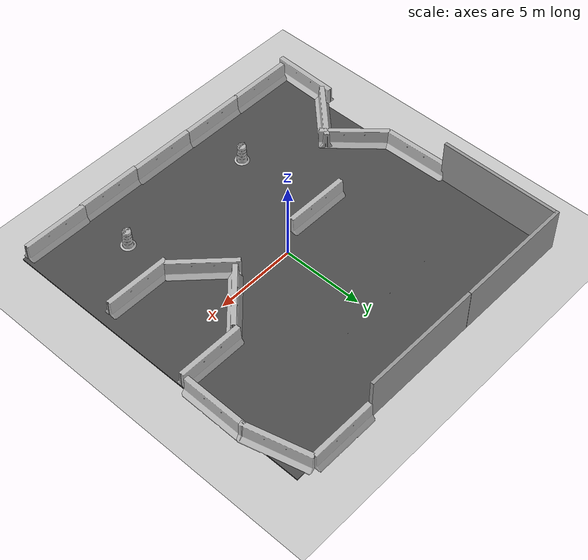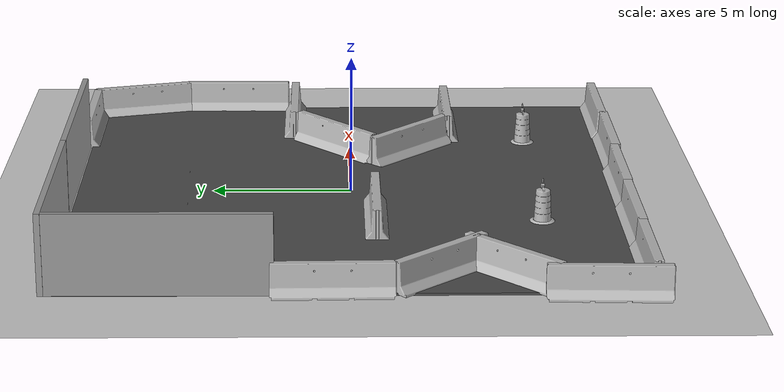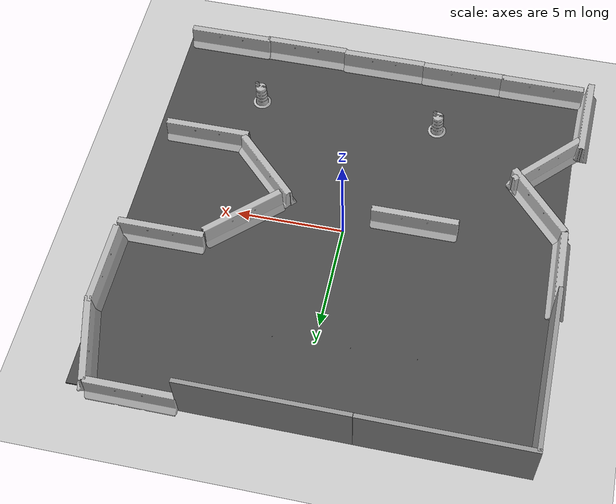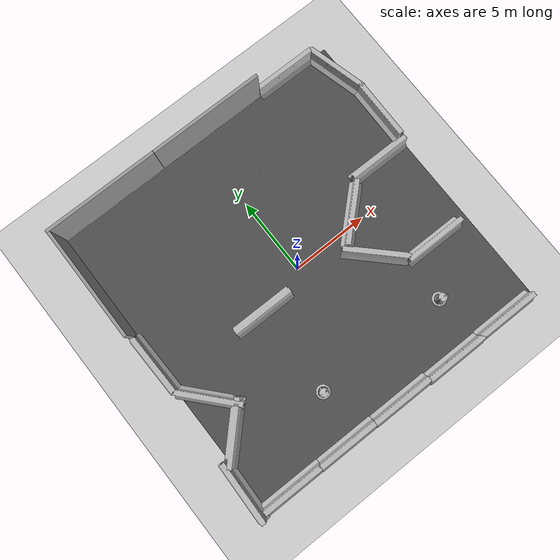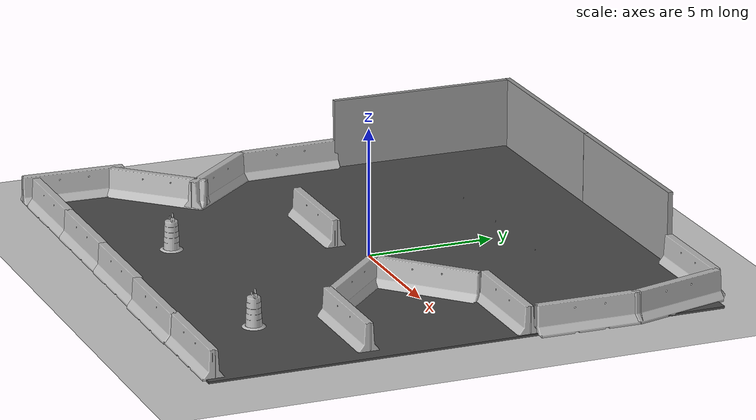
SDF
<sdf version="1.6">
 <world name="default">
  <light name="sun" type="directional">
   <pose>0 0 10 0 -0 0</pose>
   <diffuse>0.8 0.8 0.8 1</diffuse>
   <specular>0.1 0.1 0.1 1</specular>
   <attenuation>
    <range>1000</range>
    <constant>0.9</constant>
    <linear>0.01</linear>
    <quadratic>0.001</quadratic>
   </attenuation>
   <direction>-0.5 0.5 -1</direction>
  </light>
  <model name="ground_plane">
   <static>1</static>
   <link name="link">
    <collision name="collision">
     <geometry><plane><normal>0 0 1</normal><size>100 100</size></plane></geometry>
     <surface><friction><ode><mu>100</mu><mu2>50</mu2></ode></friction></surface>
    </collision>
    <visual name="visual">
     <cast_shadows>0</cast_shadows>
     <geometry><plane><normal>0 0 1</normal><size>100 100</size></plane></geometry>
     <material>
      <script><uri>file://media/materials/scripts/gazebo.material</uri><name>Gazebo/Grey</name></script>
     </material>
    </visual>
   </link>
  </model>
  <gravity>0 0 -9.8</gravity>
  <magnetic_field>6e-06 2.3e-05 -4.2e-05</magnetic_field>
  <atmosphere type="adiabatic"/>
  <physics name="default_physics" default="0" type="ode">
   <max_step_size>0.001</max_step_size>
   <real_time_factor>1</real_time_factor>
   <real_time_update_rate>1000</real_time_update_rate>
  </physics>
  <scene><ambient>0.4 0.4 0.4 1</ambient><background>0.7 0.7 0.7 1</background><shadows>1</shadows></scene>
  <spherical_coordinates>
   <surface_model>EARTH_WGS84</surface_model>
   <latitude_deg>0</latitude_deg>
   <longitude_deg>0</longitude_deg>
   <elevation>0</elevation>
   <heading_deg>0</heading_deg>
  </spherical_coordinates>
  <model name="grey_wall">
   <static>1</static>
   <link name="link">
    <pose>0 0 1.4 0 -0 0</pose>
    <collision name="collision"><geometry><box><size>7.5 0.2 2.8</size></box></geometry></collision>
    <visual name="visual">
     <cast_shadows>0</cast_shadows>
     <geometry><box><size>7.5 0.2 2.8</size></box></geometry>
     <material>
      <script>
       <uri>model://grey_wall/materials/scripts</uri>
       <uri>model://grey_wall/materials/textures</uri>
       <name>vrc/grey_wall</name>
      </script>
     </material>
    </visual>
   </link>
   <pose>-6.28224 10.0709 0 0 -0 0</pose>
  </model>
  <model name="grey_wall_0">
   <static>1</static>
   <link name="link">
    <pose>0 0 1.4 0 -0 0</pose>
    <collision name="collision"><geometry><box><size>7.5 0.2 2.8</size></box></geometry></collision>
    <visual name="visual">
     <cast_shadows>0</cast_shadows>
     <geometry><box><size>7.5 0.2 2.8</size></box></geometry>
     <material>
      <script>
       <uri>model://grey_wall/materials/scripts</uri>
       <uri>model://grey_wall/materials/textures</uri>
       <name>vrc/grey_wall</name>
      </script>
     </material>
    </visual>
   </link>
   <pose>1.23457 10.0666 0 0 -0 0</pose>
  </model>
  <model name="grey_wall_1">
   <static>1</static>
   <link name="link">
    <pose>0 0 1.4 0 -0 0</pose>
    <collision name="collision"><geometry><box><size>7.5 0.2 2.8</size></box></geometry></collision>
    <visual name="visual">
     <cast_shadows>0</cast_shadows>
     <geometry><box><size>7.5 0.2 2.8</size></box></geometry>
     <material>
      <script>
       <uri>model://grey_wall/materials/scripts</uri>
       <uri>model://grey_wall/materials/textures</uri>
       <name>vrc/grey_wall</name>
      </script>
     </material>
    </visual>
   </link>
   <pose>-9.94425 6.32421 0 0 -0 1.56445</pose>
  </model>
  <model name="jersey_barrier">
   <static>1</static>
   <link name="link">
    <visual name="visual">
     <geometry>
      <mesh><uri>model://jersey_barrier/meshes/jersey_barrier.dae</uri><scale>1 1 1</scale></mesh>
     </geometry>
    </visual>
    <collision name="upright">
     <pose>0 0 0.5715 0 -0 0</pose>
     <geometry><box><size>4.06542 0.3063 1.143</size></box></geometry>
    </collision>
    <collision name="base">
     <pose>0 0 0.032258 0 -0 0</pose>
     <geometry><box><size>4.06542 0.8107 0.064516</size></box></geometry>
    </collision>
    <collision name="base2">
     <pose>0 0 0.1 0 -0 0</pose>
     <geometry><box><size>4.06542 0.65 0.1</size></box></geometry>
    </collision>
    <collision name="base3">
     <pose>0 0 0.2 0 -0 0</pose>
     <geometry><box><size>4.06542 0.5 0.1</size></box></geometry>
    </collision>
    <collision name="left-angle">
     <pose>0 -0.224 0.2401 0.9 -0 0</pose>
     <geometry><box><size>4.06542 0.5 0.064516</size></box></geometry>
    </collision>
    <collision name="right-angle">
     <pose>0 0.224 0.2401 -0.9 0 0</pose>
     <geometry><box><size>4.06542 0.5 0.064516</size></box></geometry>
    </collision>
   </link>
   <pose>6.98061 10.0389 0 0 -0 0</pose>
  </model>
  <model name="jersey_barrier_0">
   <static>1</static>
   <link name="link">
    <visual name="visual">
     <geometry>
      <mesh><uri>model://jersey_barrier/meshes/jersey_barrier.dae</uri><scale>1 1 1</scale></mesh>
     </geometry>
    </visual>
    <collision name="upright">
     <pose>0 0 0.5715 0 -0 0</pose>
     <geometry><box><size>4.06542 0.3063 1.143</size></box></geometry>
    </collision>
    <collision name="base">
     <pose>0 0 0.032258 0 -0 0</pose>
     <geometry><box><size>4.06542 0.8107 0.064516</size></box></geometry>
    </collision>
    <collision name="base2">
     <pose>0 0 0.1 0 -0 0</pose>
     <geometry><box><size>4.06542 0.65 0.1</size></box></geometry>
    </collision>
    <collision name="base3">
     <pose>0 0 0.2 0 -0 0</pose>
     <geometry><box><size>4.06542 0.5 0.1</size></box></geometry>
    </collision>
    <collision name="left-angle">
     <pose>0 -0.224 0.2401 0.9 -0 0</pose>
     <geometry><box><size>4.06542 0.5 0.064516</size></box></geometry>
    </collision>
    <collision name="right-angle">
     <pose>0 0.224 0.2401 -0.9 0 0</pose>
     <geometry><box><size>4.06542 0.5 0.064516</size></box></geometry>
    </collision>
   </link>
   <pose>9.53249 8.14758 0 0 0 -1.31206</pose>
  </model>
  <model name="jersey_barrier_1">
   <static>1</static>
   <link name="link">
    <visual name="visual">
     <geometry>
      <mesh><uri>model://jersey_barrier/meshes/jersey_barrier.dae</uri><scale>1 1 1</scale></mesh>
     </geometry>
    </visual>
    <collision name="upright">
     <pose>0 0 0.5715 0 -0 0</pose>
     <geometry><box><size>4.06542 0.3063 1.143</size></box></geometry>
    </collision>
    <collision name="base">
     <pose>0 0 0.032258 0 -0 0</pose>
     <geometry><box><size>4.06542 0.8107 0.064516</size></box></geometry>
    </collision>
    <collision name="base2">
     <pose>0 0 0.1 0 -0 0</pose>
     <geometry><box><size>4.06542 0.65 0.1</size></box></geometry>
    </collision>
    <collision name="base3">
     <pose>0 0 0.2 0 -0 0</pose>
     <geometry><box><size>4.06542 0.5 0.1</size></box></geometry>
    </collision>
    <collision name="left-angle">
     <pose>0 -0.224 0.2401 0.9 -0 0</pose>
     <geometry><box><size>4.06542 0.5 0.064516</size></box></geometry>
    </collision>
    <collision name="right-angle">
     <pose>0 0.224 0.2401 -0.9 0 0</pose>
     <geometry><box><size>4.06542 0.5 0.064516</size></box></geometry>
    </collision>
   </link>
   <pose>-8.65412 -2.83844 0 0 0 -0.840194</pose>
  </model>
  <model name="jersey_barrier_2">
   <static>1</static>
   <link name="link">
    <visual name="visual">
     <geometry>
      <mesh><uri>model://jersey_barrier/meshes/jersey_barrier.dae</uri><scale>1 1 1</scale></mesh>
     </geometry>
    </visual>
    <collision name="upright">
     <pose>0 0 0.5715 0 -0 0</pose>
     <geometry><box><size>4.06542 0.3063 1.143</size></box></geometry>
    </collision>
    <collision name="base">
     <pose>0 0 0.032258 0 -0 0</pose>
     <geometry><box><size>4.06542 0.8107 0.064516</size></box></geometry>
    </collision>
    <collision name="base2">
     <pose>0 0 0.1 0 -0 0</pose>
     <geometry><box><size>4.06542 0.65 0.1</size></box></geometry>
    </collision>
    <collision name="base3">
     <pose>0 0 0.2 0 -0 0</pose>
     <geometry><box><size>4.06542 0.5 0.1</size></box></geometry>
    </collision>
    <collision name="left-angle">
     <pose>0 -0.224 0.2401 0.9 -0 0</pose>
     <geometry><box><size>4.06542 0.5 0.064516</size></box></geometry>
    </collision>
    <collision name="right-angle">
     <pose>0 0.224 0.2401 -0.9 0 0</pose>
     <geometry><box><size>4.06542 0.5 0.064516</size></box></geometry>
    </collision>
   </link>
   <pose>-10.3097 -8.15685 0 0 0 -1.60239</pose>
  </model>
  <model name="jersey_barrier_3">
   <static>1</static>
   <link name="link">
    <visual name="visual">
     <geometry>
      <mesh><uri>model://jersey_barrier/meshes/jersey_barrier.dae</uri><scale>1 1 1</scale></mesh>
     </geometry>
    </visual>
    <collision name="upright">
     <pose>0 0 0.5715 0 -0 0</pose>
     <geometry><box><size>4.06542 0.3063 1.143</size></box></geometry>
    </collision>
    <collision name="base">
     <pose>0 0 0.032258 0 -0 0</pose>
     <geometry><box><size>4.06542 0.8107 0.064516</size></box></geometry>
    </collision>
    <collision name="base2">
     <pose>0 0 0.1 0 -0 0</pose>
     <geometry><box><size>4.06542 0.65 0.1</size></box></geometry>
    </collision>
    <collision name="base3">
     <pose>0 0 0.2 0 -0 0</pose>
     <geometry><box><size>4.06542 0.5 0.1</size></box></geometry>
    </collision>
    <collision name="left-angle">
     <pose>0 -0.224 0.2401 0.9 -0 0</pose>
     <geometry><box><size>4.06542 0.5 0.064516</size></box></geometry>
    </collision>
    <collision name="right-angle">
     <pose>0 0.224 0.2401 -0.9 0 0</pose>
     <geometry><box><size>4.06542 0.5 0.064516</size></box></geometry>
    </collision>
   </link>
   <pose>4.60062 0.507098 0 0 -0 0.75328</pose>
  </model>
  <model name="jersey_barrier_4">
   <static>1</static>
   <link name="link">
    <visual name="visual">
     <geometry>
      <mesh><uri>model://jersey_barrier/meshes/jersey_barrier.dae</uri><scale>1 1 1</scale></mesh>
     </geometry>
    </visual>
    <collision name="upright">
     <pose>0 0 0.5715 0 -0 0</pose>
     <geometry><box><size>4.06542 0.3063 1.143</size></box></geometry>
    </collision>
    <collision name="base">
     <pose>0 0 0.032258 0 -0 0</pose>
     <geometry><box><size>4.06542 0.8107 0.064516</size></box></geometry>
    </collision>
    <collision name="base2">
     <pose>0 0 0.1 0 -0 0</pose>
     <geometry><box><size>4.06542 0.65 0.1</size></box></geometry>
    </collision>
    <collision name="base3">
     <pose>0 0 0.2 0 -0 0</pose>
     <geometry><box><size>4.06542 0.5 0.1</size></box></geometry>
    </collision>
    <collision name="left-angle">
     <pose>0 -0.224 0.2401 0.9 -0 0</pose>
     <geometry><box><size>4.06542 0.5 0.064516</size></box></geometry>
    </collision>
    <collision name="right-angle">
     <pose>0 0.224 0.2401 -0.9 0 0</pose>
     <geometry><box><size>4.06542 0.5 0.064516</size></box></geometry>
    </collision>
   </link>
   <pose>4.14535 -2.25989 0 0 0 -0.779116</pose>
  </model>
  <model name="jersey_barrier_5">
   <static>1</static>
   <link name="link">
    <visual name="visual">
     <geometry>
      <mesh><uri>model://jersey_barrier/meshes/jersey_barrier.dae</uri><scale>1 1 1</scale></mesh>
     </geometry>
    </visual>
    <collision name="upright">
     <pose>0 0 0.5715 0 -0 0</pose>
     <geometry><box><size>4.06542 0.3063 1.143</size></box></geometry>
    </collision>
    <collision name="base">
     <pose>0 0 0.032258 0 -0 0</pose>
     <geometry><box><size>4.06542 0.8107 0.064516</size></box></geometry>
    </collision>
    <collision name="base2">
     <pose>0 0 0.1 0 -0 0</pose>
     <geometry><box><size>4.06542 0.65 0.1</size></box></geometry>
    </collision>
    <collision name="base3">
     <pose>0 0 0.2 0 -0 0</pose>
     <geometry><box><size>4.06542 0.5 0.1</size></box></geometry>
    </collision>
    <collision name="left-angle">
     <pose>0 -0.224 0.2401 0.9 -0 0</pose>
     <geometry><box><size>4.06542 0.5 0.064516</size></box></geometry>
    </collision>
    <collision name="right-angle">
     <pose>0 0.224 0.2401 -0.9 0 0</pose>
     <geometry><box><size>4.06542 0.5 0.064516</size></box></geometry>
    </collision>
   </link>
   <pose>-10.0167 0.695325 0 0 0 -1.55224</pose>
  </model>
  <model name="jersey_barrier_6">
   <static>1</static>
   <link name="link">
    <visual name="visual">
     <geometry>
      <mesh><uri>model://jersey_barrier/meshes/jersey_barrier.dae</uri><scale>1 1 1</scale></mesh>
     </geometry>
    </visual>
    <collision name="upright">
     <pose>0 0 0.5715 0 -0 0</pose>
     <geometry><box><size>4.06542 0.3063 1.143</size></box></geometry>
    </collision>
    <collision name="base">
     <pose>0 0 0.032258 0 -0 0</pose>
     <geometry><box><size>4.06542 0.8107 0.064516</size></box></geometry>
    </collision>
    <collision name="base2">
     <pose>0 0 0.1 0 -0 0</pose>
     <geometry><box><size>4.06542 0.65 0.1</size></box></geometry>
    </collision>
    <collision name="base3">
     <pose>0 0 0.2 0 -0 0</pose>
     <geometry><box><size>4.06542 0.5 0.1</size></box></geometry>
    </collision>
    <collision name="left-angle">
     <pose>0 -0.224 0.2401 0.9 -0 0</pose>
     <geometry><box><size>4.06542 0.5 0.064516</size></box></geometry>
    </collision>
    <collision name="right-angle">
     <pose>0 0.224 0.2401 -0.9 0 0</pose>
     <geometry><box><size>4.06542 0.5 0.064516</size></box></geometry>
    </collision>
   </link>
   <pose>-8.72432 -5.22331 0 0 -0 0.799917</pose>
  </model>
  <model name="jersey_barrier_7">
   <static>1</static>
   <link name="link">
    <visual name="visual">
     <geometry>
      <mesh><uri>model://jersey_barrier/meshes/jersey_barrier.dae</uri><scale>1 1 1</scale></mesh>
     </geometry>
    </visual>
    <collision name="upright">
     <pose>0 0 0.5715 0 -0 0</pose>
     <geometry><box><size>4.06542 0.3063 1.143</size></box></geometry>
    </collision>
    <collision name="base">
     <pose>0 0 0.032258 0 -0 0</pose>
     <geometry><box><size>4.06542 0.8107 0.064516</size></box></geometry>
    </collision>
    <collision name="base2">
     <pose>0 0 0.1 0 -0 0</pose>
     <geometry><box><size>4.06542 0.65 0.1</size></box></geometry>
    </collision>
    <collision name="base3">
     <pose>0 0 0.2 0 -0 0</pose>
     <geometry><box><size>4.06542 0.5 0.1</size></box></geometry>
    </collision>
    <collision name="left-angle">
     <pose>0 -0.224 0.2401 0.9 -0 0</pose>
     <geometry><box><size>4.06542 0.5 0.064516</size></box></geometry>
    </collision>
    <collision name="right-angle">
     <pose>0 0.224 0.2401 -0.9 0 0</pose>
     <geometry><box><size>4.06542 0.5 0.064516</size></box></geometry>
    </collision>
   </link>
   <pose>-4.10944 -9.75959 0 0 -0 0</pose>
  </model>
  <model name="jersey_barrier_8">
   <static>1</static>
   <link name="link">
    <visual name="visual">
     <geometry>
      <mesh><uri>model://jersey_barrier/meshes/jersey_barrier.dae</uri><scale>1 1 1</scale></mesh>
     </geometry>
    </visual>
    <collision name="upright">
     <pose>0 0 0.5715 0 -0 0</pose>
     <geometry><box><size>4.06542 0.3063 1.143</size></box></geometry>
    </collision>
    <collision name="base">
     <pose>0 0 0.032258 0 -0 0</pose>
     <geometry><box><size>4.06542 0.8107 0.064516</size></box></geometry>
    </collision>
    <collision name="base2">
     <pose>0 0 0.1 0 -0 0</pose>
     <geometry><box><size>4.06542 0.65 0.1</size></box></geometry>
    </collision>
    <collision name="base3">
     <pose>0 0 0.2 0 -0 0</pose>
     <geometry><box><size>4.06542 0.5 0.1</size></box></geometry>
    </collision>
    <collision name="left-angle">
     <pose>0 -0.224 0.2401 0.9 -0 0</pose>
     <geometry><box><size>4.06542 0.5 0.064516</size></box></geometry>
    </collision>
    <collision name="right-angle">
     <pose>0 0.224 0.2401 -0.9 0 0</pose>
     <geometry><box><size>4.06542 0.5 0.064516</size></box></geometry>
    </collision>
   </link>
   <pose>-8.00404 -9.74209 0 0 -0 0</pose>
  </model>
  <model name="jersey_barrier_9">
   <static>1</static>
   <link name="link">
    <visual name="visual">
     <geometry>
      <mesh><uri>model://jersey_barrier/meshes/jersey_barrier.dae</uri><scale>1 1 1</scale></mesh>
     </geometry>
    </visual>
    <collision name="upright">
     <pose>0 0 0.5715 0 -0 0</pose>
     <geometry><box><size>4.06542 0.3063 1.143</size></box></geometry>
    </collision>
    <collision name="base">
     <pose>0 0 0.032258 0 -0 0</pose>
     <geometry><box><size>4.06542 0.8107 0.064516</size></box></geometry>
    </collision>
    <collision name="base2">
     <pose>0 0 0.1 0 -0 0</pose>
     <geometry><box><size>4.06542 0.65 0.1</size></box></geometry>
    </collision>
    <collision name="base3">
     <pose>0 0 0.2 0 -0 0</pose>
     <geometry><box><size>4.06542 0.5 0.1</size></box></geometry>
    </collision>
    <collision name="left-angle">
     <pose>0 -0.224 0.2401 0.9 -0 0</pose>
     <geometry><box><size>4.06542 0.5 0.064516</size></box></geometry>
    </collision>
    <collision name="right-angle">
     <pose>0 0.224 0.2401 -0.9 0 0</pose>
     <geometry><box><size>4.06542 0.5 0.064516</size></box></geometry>
    </collision>
   </link>
   <pose>-0.100254 -9.78745 0 0 -0 0</pose>
  </model>
  <model name="jersey_barrier_10">
   <static>1</static>
   <link name="link">
    <visual name="visual">
     <geometry>
      <mesh><uri>model://jersey_barrier/meshes/jersey_barrier.dae</uri><scale>1 1 1</scale></mesh>
     </geometry>
    </visual>
    <collision name="upright">
     <pose>0 0 0.5715 0 -0 0</pose>
     <geometry><box><size>4.06542 0.3063 1.143</size></box></geometry>
    </collision>
    <collision name="base">
     <pose>0 0 0.032258 0 -0 0</pose>
     <geometry><box><size>4.06542 0.8107 0.064516</size></box></geometry>
    </collision>
    <collision name="base2">
     <pose>0 0 0.1 0 -0 0</pose>
     <geometry><box><size>4.06542 0.65 0.1</size></box></geometry>
    </collision>
    <collision name="base3">
     <pose>0 0 0.2 0 -0 0</pose>
     <geometry><box><size>4.06542 0.5 0.1</size></box></geometry>
    </collision>
    <collision name="left-angle">
     <pose>0 -0.224 0.2401 0.9 -0 0</pose>
     <geometry><box><size>4.06542 0.5 0.064516</size></box></geometry>
    </collision>
    <collision name="right-angle">
     <pose>0 0.224 0.2401 -0.9 0 0</pose>
     <geometry><box><size>4.06542 0.5 0.064516</size></box></geometry>
    </collision>
   </link>
   <pose>3.88791 -9.86297 0 0 -0 0</pose>
  </model>
  <model name="jersey_barrier_11">
   <static>1</static>
   <link name="link">
    <visual name="visual">
     <geometry>
      <mesh><uri>model://jersey_barrier/meshes/jersey_barrier.dae</uri><scale>1 1 1</scale></mesh>
     </geometry>
    </visual>
    <collision name="upright">
     <pose>0 0 0.5715 0 -0 0</pose>
     <geometry><box><size>4.06542 0.3063 1.143</size></box></geometry>
    </collision>
    <collision name="base">
     <pose>0 0 0.032258 0 -0 0</pose>
     <geometry><box><size>4.06542 0.8107 0.064516</size></box></geometry>
    </collision>
    <collision name="base2">
     <pose>0 0 0.1 0 -0 0</pose>
     <geometry><box><size>4.06542 0.65 0.1</size></box></geometry>
    </collision>
    <collision name="base3">
     <pose>0 0 0.2 0 -0 0</pose>
     <geometry><box><size>4.06542 0.5 0.1</size></box></geometry>
    </collision>
    <collision name="left-angle">
     <pose>0 -0.224 0.2401 0.9 -0 0</pose>
     <geometry><box><size>4.06542 0.5 0.064516</size></box></geometry>
    </collision>
    <collision name="right-angle">
     <pose>0 0.224 0.2401 -0.9 0 0</pose>
     <geometry><box><size>4.06542 0.5 0.064516</size></box></geometry>
    </collision>
   </link>
   <pose>7.79584 -9.81767 0 0 -0 0</pose>
  </model>
  <model name="jersey_barrier_12">
   <static>1</static>
   <link name="link">
    <visual name="visual">
     <geometry>
      <mesh><uri>model://jersey_barrier/meshes/jersey_barrier.dae</uri><scale>1 1 1</scale></mesh>
     </geometry>
    </visual>
    <collision name="upright">
     <pose>0 0 0.5715 0 -0 0</pose>
     <geometry><box><size>4.06542 0.3063 1.143</size></box></geometry>
    </collision>
    <collision name="base">
     <pose>0 0 0.032258 0 -0 0</pose>
     <geometry><box><size>4.06542 0.8107 0.064516</size></box></geometry>
    </collision>
    <collision name="base2">
     <pose>0 0 0.1 0 -0 0</pose>
     <geometry><box><size>4.06542 0.65 0.1</size></box></geometry>
    </collision>
    <collision name="base3">
     <pose>0 0 0.2 0 -0 0</pose>
     <geometry><box><size>4.06542 0.5 0.1</size></box></geometry>
    </collision>
    <collision name="left-angle">
     <pose>0 -0.224 0.2401 0.9 -0 0</pose>
     <geometry><box><size>4.06542 0.5 0.064516</size></box></geometry>
    </collision>
    <collision name="right-angle">
     <pose>0 0.224 0.2401 -0.9 0 0</pose>
     <geometry><box><size>4.06542 0.5 0.064516</size></box></geometry>
    </collision>
   </link>
   <pose>7.40261 -3.80654 0 0 -0 0</pose>
  </model>
  <model name="jersey_barrier_13">
   <static>1</static>
   <link name="link">
    <visual name="visual">
     <geometry>
      <mesh><uri>model://jersey_barrier/meshes/jersey_barrier.dae</uri><scale>1 1 1</scale></mesh>
     </geometry>
    </visual>
    <collision name="upright">
     <pose>0 0 0.5715 0 -0 0</pose>
     <geometry><box><size>4.06542 0.3063 1.143</size></box></geometry>
    </collision>
    <collision name="base">
     <pose>0 0 0.032258 0 -0 0</pose>
     <geometry><box><size>4.06542 0.8107 0.064516</size></box></geometry>
    </collision>
    <collision name="base2">
     <pose>0 0 0.1 0 -0 0</pose>
     <geometry><box><size>4.06542 0.65 0.1</size></box></geometry>
    </collision>
    <collision name="base3">
     <pose>0 0 0.2 0 -0 0</pose>
     <geometry><box><size>4.06542 0.5 0.1</size></box></geometry>
    </collision>
    <collision name="left-angle">
     <pose>0 -0.224 0.2401 0.9 -0 0</pose>
     <geometry><box><size>4.06542 0.5 0.064516</size></box></geometry>
    </collision>
    <collision name="right-angle">
     <pose>0 0.224 0.2401 -0.9 0 0</pose>
     <geometry><box><size>4.06542 0.5 0.064516</size></box></geometry>
    </collision>
   </link>
   <pose>7.97897 2.13532 0 0 -0 0</pose>
  </model>
  <model name="jersey_barrier_14">
   <static>1</static>
   <link name="link">
    <visual name="visual">
     <geometry>
      <mesh><uri>model://jersey_barrier/meshes/jersey_barrier.dae</uri><scale>1 1 1</scale></mesh>
     </geometry>
    </visual>
    <collision name="upright">
     <pose>0 0 0.5715 0 -0 0</pose>
     <geometry><box><size>4.06542 0.3063 1.143</size></box></geometry>
    </collision>
    <collision name="base">
     <pose>0 0 0.032258 0 -0 0</pose>
     <geometry><box><size>4.06542 0.8107 0.064516</size></box></geometry>
    </collision>
    <collision name="base2">
     <pose>0 0 0.1 0 -0 0</pose>
     <geometry><box><size>4.06542 0.65 0.1</size></box></geometry>
    </collision>
    <collision name="base3">
     <pose>0 0 0.2 0 -0 0</pose>
     <geometry><box><size>4.06542 0.5 0.1</size></box></geometry>
    </collision>
    <collision name="left-angle">
     <pose>0 -0.224 0.2401 0.9 -0 0</pose>
     <geometry><box><size>4.06542 0.5 0.064516</size></box></geometry>
    </collision>
    <collision name="right-angle">
     <pose>0 0.224 0.2401 -0.9 0 0</pose>
     <geometry><box><size>4.06542 0.5 0.064516</size></box></geometry>
    </collision>
   </link>
   <pose>9.97754 4.45206 0 0 0 -1.58135</pose>
  </model>
  <model name="Construction Barrel">
   <static>1</static>
   <link name="link">
    <inertial>
     <pose>0 0 0.4 0 -0 0</pose>
     <mass>500</mass>
     <inertia><ixx>51.2096</ixx><iyy>51.2096</iyy><izz>25</izz><ixy>0</ixy><ixz>0</ixz><iyz>0</iyz></inertia>
    </inertial>
    <collision name="collision">
     <geometry>
      <mesh><uri>model://construction_barrel/meshes/construction_barrel.dae</uri><scale>1 1 1</scale></mesh>
     </geometry>
    </collision>
    <visual name="visual">
     <geometry>
      <mesh><uri>model://construction_barrel/meshes/construction_barrel.dae</uri><scale>1 1 1</scale></mesh>
     </geometry>
    </visual>
   </link>
   <pose>5.4843 -6.68832 0 0 -0 0</pose>
  </model>
  <model name="Construction Cone">
   <static>1</static>
   <link name="link">
    <collision name="collision">
     <geometry>
      <mesh><scale>1 1 1</scale><uri>model://construction_cone/meshes/construction_cone.dae</uri></mesh>
     </geometry>
    </collision>
    <visual name="visual">
     <geometry>
      <mesh><scale>1 1 1</scale><uri>model://construction_cone/meshes/construction_cone.dae</uri></mesh>
     </geometry>
    </visual>
   </link>
   <pose>-4.50945 5.79745 0 0 -0 0</pose>
  </model>
  <model name="Construction Cone_0">
   <static>1</static>
   <link name="link">
    <collision name="collision">
     <geometry>
      <mesh><scale>1 1 1</scale><uri>model://construction_cone/meshes/construction_cone.dae</uri></mesh>
     </geometry>
    </collision>
    <visual name="visual">
     <geometry>
      <mesh><scale>1 1 1</scale><uri>model://construction_cone/meshes/construction_cone.dae</uri></mesh>
     </geometry>
    </visual>
   </link>
   <pose>-1.56133 5.85977 0 0 -0 0</pose>
  </model>
  <model name="Construction Cone_1">
   <static>1</static>
   <link name="link">
    <collision name="collision">
     <geometry>
      <mesh><scale>1 1 1</scale><uri>model://construction_cone/meshes/construction_cone.dae</uri></mesh>
     </geometry>
    </collision>
    <visual name="visual">
     <geometry>
      <mesh><scale>1 1 1</scale><uri>model://construction_cone/meshes/construction_cone.dae</uri></mesh>
     </geometry>
    </visual>
   </link>
   <pose>1.90208 5.97826 0 0 -0 0</pose>
  </model>
  <model name="jersey_barrier_15">
   <static>1</static>
   <link name="link">
    <visual name="visual">
     <geometry>
      <mesh><uri>model://jersey_barrier/meshes/jersey_barrier.dae</uri><scale>1 1 1</scale></mesh>
     </geometry>
    </visual>
    <collision name="upright">
     <pose>0 0 0.5715 0 -0 0</pose>
     <geometry><box><size>4.06542 0.3063 1.143</size></box></geometry>
    </collision>
    <collision name="base">
     <pose>0 0 0.032258 0 -0 0</pose>
     <geometry><box><size>4.06542 0.8107 0.064516</size></box></geometry>
    </collision>
    <collision name="base2">
     <pose>0 0 0.1 0 -0 0</pose>
     <geometry><box><size>4.06542 0.65 0.1</size></box></geometry>
    </collision>
    <collision name="base3">
     <pose>0 0 0.2 0 -0 0</pose>
     <geometry><box><size>4.06542 0.5 0.1</size></box></geometry>
    </collision>
    <collision name="left-angle">
     <pose>0 -0.224 0.2401 0.9 -0 0</pose>
     <geometry><box><size>4.06542 0.5 0.064516</size></box></geometry>
    </collision>
    <collision name="right-angle">
     <pose>0 0.224 0.2401 -0.9 0 0</pose>
     <geometry><box><size>4.06542 0.5 0.064516</size></box></geometry>
    </collision>
   </link>
   <pose>-3.19827 -0.837656 0 0 -0 0</pose>
  </model>
  <model name="Construction Barrel_0">
   <static>1</static>
   <link name="link">
    <inertial>
     <pose>0 0 0.4 0 -0 0</pose>
     <mass>500</mass>
     <inertia><ixx>51.2096</ixx><iyy>51.2096</iyy><izz>25</izz><ixy>0</ixy><ixz>0</ixz><iyz>0</iyz></inertia>
    </inertial>
    <collision name="collision">
     <geometry>
      <mesh><uri>model://construction_barrel/meshes/construction_barrel.dae</uri><scale>1 1 1</scale></mesh>
     </geometry>
    </collision>
    <visual name="visual">
     <geometry>
      <mesh><uri>model://construction_barrel/meshes/construction_barrel.dae</uri><scale>1 1 1</scale></mesh>
     </geometry>
    </visual>
   </link>
   <pose>-3.31417 -6.65015 0 0 -0 0</pose>
  </model>
  <model name="asphalt_plane">
   <static>1</static>
   <link name="link">
    <collision name="collision"><geometry><box><size>20 20 0.1</size></box></geometry></collision>
    <visual name="visual">
     <cast_shadows>0</cast_shadows>
     <geometry><box><size>20 20 0.1</size></box></geometry>
     <material>
      <script>
       <uri>model://asphalt_plane/materials/scripts</uri>
       <uri>model://asphalt_plane/materials/textures</uri>
       <name>vrc/asphalt</name>
      </script>
     </material>
    </visual>
   </link>
   <pose>0.010801 -0.089928 0 0 -0 0</pose>
  </model>
 </world>
</sdf>
